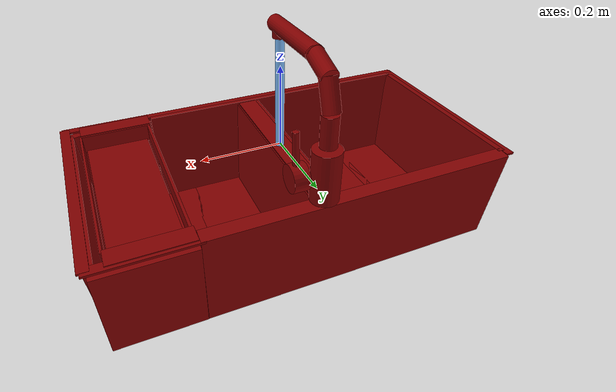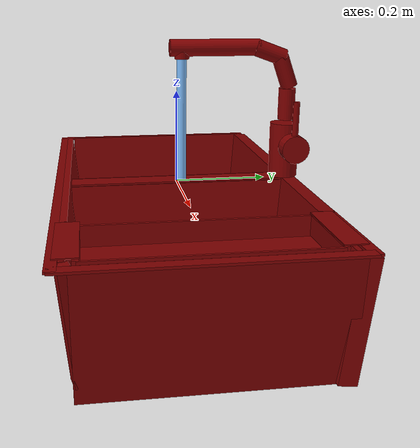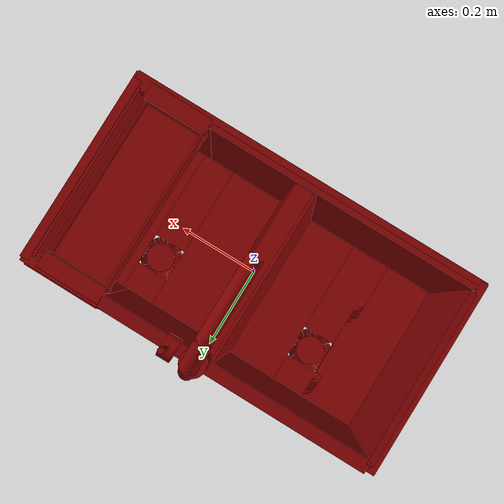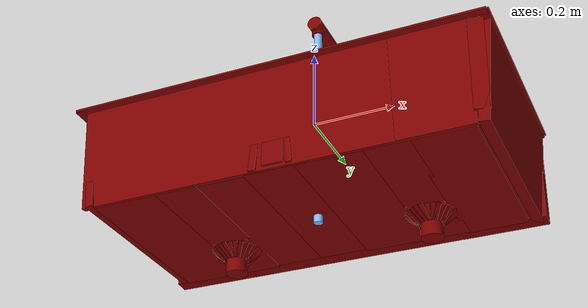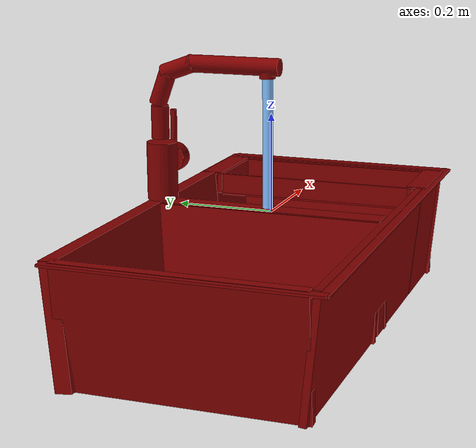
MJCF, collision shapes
<mujoco model="model">
  <compiler angle="radian"/>
  <asset>
    <mesh file="visuals/handle.obj" name="handle_vis"/>
    <mesh file="visuals/Body001.obj" name="Body001_vis"/>
    <mesh file="visuals/Container001.obj" name="Container001_vis"/>
    <mesh file="visuals/Funnel001.obj" name="Funnel001_vis"/>
    <mesh file="visuals/Funnel002.obj" name="Funnel002_vis"/>
    <mesh file="visuals/spout.obj" name="spout_vis"/>
    <texture file="visuals/T_BC001.png" name="Body001_material" type="2d"/>
    <material name="Body001_material" rgba="1 1 1 1.0" texture="Body001_material" shininess="0.4472135901451111" specular="0.7"/>
    <texture file="visuals/T_BC001.png" name="handle_material" type="2d"/>
    <material name="handle_material" rgba="1 1 1 1.0" texture="handle_material" shininess="0.4472135901451111" specular="0.7"/>
    <texture file="visuals/T_BC001.png" name="Container001_material" type="2d"/>
    <material name="Container001_material" rgba="1 1 1 1.0" texture="Container001_material" shininess="0.4472135901451111" specular="0.7"/>
    <texture file="visuals/T_BC001.png" name="Funnel001_material" type="2d"/>
    <material name="Funnel001_material" rgba="1 1 1 1.0" texture="Funnel001_material" shininess="0.4472135901451111" specular="0.7"/>
    <texture file="visuals/T_BC001.png" name="Funnel002_material" type="2d"/>
    <material name="Funnel002_material" rgba="1 1 1 1.0" texture="Funnel002_material" shininess="0.4472135901451111" specular="0.7"/>
    <texture file="visuals/T_BC001.png" name="spout_material" type="2d"/>
    <material name="spout_material" rgba="1 1 1 1.0" texture="spout_material" shininess="0.4472135901451111" specular="0.7"/>
  </asset>
  <default>
    <default class="visual">
      <geom conaffinity="0" contype="0" group="1" type="mesh"/>
    </default>
    <default class="collision">
      <geom group="0" rgba="0.5 0 0 0.5"/>
    </default>
    <default class="spawn">
      <geom group="0" rgba="1 1 1 0.5" contype="0" conaffinity="0"/>
      <site group="0" rgba="1 1 1 0.5"/>
    </default>
    <default class="region">
      <geom group="1" conaffinity="0" contype="0" rgba="0 1 0 0"/>
    </default>
  </default>
  <worldbody>
    <body>
      <body name="object">
        <geom mesh="Body001_vis" type="mesh" solimp="0.998 0.998 0.001" solref="0.001 1" density="100" friction="0.95 0.3 0.1" class="visual" material="Body001_material"/>
        <geom class="collision" type="box" pos="-0.097335 0.240961 -0.119441" size="0.3727695345878601 0.01719934493303299 0.12440010160207748" quat="0.9990482330322266 -0.04361938312649727 -0.0 0.0"/>
        <geom class="collision" type="box" pos="-0.099577 -0.232523 -0.117567" size="0.37052756547927856 0.007144593633711338 0.12359046936035156" quat="0.9987403750419617 0.05017662048339844 0.0 0.0"/>
        <geom class="collision" type="box" pos="0.001221 0.005688 -0.114451" size="0.024436986073851585 0.239365354180336 0.11916808784008026" quat="1.0 0.0 0.0 0.0"/>
        <geom class="collision" type="box" pos="-0.459418 0.005688 -0.118069" size="0.23936714231967926 0.009068615734577179 0.12404944002628326" quat="0.7063643336296082 0.03239481896162033 -0.032394833862781525 -0.7063643336296082"/>
        <geom class="collision" type="box" pos="0.468554 0.005688 -0.121440" size="0.23936714231967926 0.012515637092292309 0.1218361184000969" quat="0.7064337730407715 -0.030843568965792656 0.030843574553728104 -0.7064337730407715"/>
        <geom class="collision" type="box" pos="-0.121145 0.000711 -0.235452" size="0.07363183796405792 0.2215971201658249 0.004479744005948305" quat="1.0 0.0 0.0 0.0"/>
        <geom class="collision" type="box" pos="-0.364013 0.000711 -0.236947" size="0.07776174694299698 0.22159627079963684 0.0055097537115216255" quat="1.0 0.0 0.0 0.0"/>
        <geom class="collision" type="box" pos="-0.245916 -0.086719 -0.236947" size="0.06047846004366875 0.13416701555252075 0.005509753245860338" quat="1.0 0.0 0.0 0.0"/>
        <geom class="collision" type="box" pos="-0.245916 0.179095 -0.236947" size="0.060478467494249344 0.04014301672577858 0.005509752780199051" quat="1.0 0.0 0.0 0.0"/>
        <geom class="collision" type="box" pos="0.241691 0.178760 -0.237091" size="0.060478467494249344 0.04047823324799538 0.005365547724068165" quat="1.0 0.0 0.0 0.0"/>
        <geom class="collision" type="box" pos="0.241691 -0.086917 -0.237091" size="0.06047846004366875 0.13396848738193512 0.005365561693906784" quat="1.0 0.0 0.0 0.0"/>
        <geom class="collision" type="box" pos="0.122644 0.000711 -0.237091" size="0.07681215554475784 0.22159676253795624 0.005365575663745403" quat="1.0 0.0 0.0 0.0"/>
        <geom class="collision" type="box" pos="0.366532 0.000711 -0.237091" size="0.07356063276529312 0.2215968519449234 0.005365582183003426" quat="1.0 0.0 0.0 0.0"/>
        <geom class="collision" type="box" pos="0.357728 -0.232689 -0.120407" size="0.08612968027591705 0.007161289919167757 0.12030033767223358" quat="0.998741865158081 0.05014668405056 0.0 0.0"/>
        <geom class="collision" type="box" pos="0.379096 0.243411 -0.124631" size="0.1026066467165947 0.01779850758612156 0.11898449063301086" quat="0.9984838366508484 -0.05504579097032547 -0.0 0.0"/>
        <geom class="collision" type="cylinder" pos="0.005860 0.243191 0.066900" size="0.03196365758776665 0.05996483936905861" quat="1.0 0.0 0.0 0.0"/>
        <geom class="collision" type="box" pos="-0.034658 0.005688 -0.118621" size="0.008054555393755436 0.239366352558136 0.122091144323349" quat="0.9988089203834534 0.0 0.04879241809248924 0.0"/>
        <geom class="collision" type="box" pos="0.030966 0.005688 -0.117954" size="0.006487147882580757 0.239366352558136 0.1191689521074295" quat="0.9994208216667175 0.0 -0.03402910754084587 0.0"/>
        <geom class="collision" type="box" pos="0.001359 0.000711 -0.239127" size="0.07363183796405792 0.2215971201658249 0.0020765289664268494" quat="1.0 0.0 0.0 0.0"/>
        <geom class="collision" type="cylinder" pos="-0.241272 0.095636 -0.288460" size="0.025850877165794373 0.01687796041369438" quat="1.0 0.0 0.0 0.0"/>
        <geom class="collision" type="cylinder" pos="0.245279 0.095636 -0.288460" size="0.025850877165794373 0.01687796041369438" quat="1.0 0.0 0.0 0.0"/>
        <geom class="collision" type="box" pos="0.457434 -0.231868 -0.107635" size="0.01751090958714485 0.012311534956097603 0.10557723045349121" quat="0.992235541343689 0.04669763520359993 0.009445227682590485 0.11488579213619232"/>
        <geom class="collision" type="box" pos="0.001010 -0.259458 0.001205" size="0.49104857444763184 0.010111307725310326 0.002418790478259325" quat="1.0 0.0 0.0 0.0"/>
        <geom class="collision" type="box" pos="-0.482469 -0.002319 0.001205" size="0.010111324489116669 0.26331180334091187 0.002418791875243187" quat="1.0 0.0 0.0 0.0"/>
        <geom class="collision" type="box" pos="0.484904 -0.002319 0.001205" size="0.011575013399124146 0.26331183314323425 0.002418791875243187" quat="1.0 0.0 0.0 0.0"/>
        <geom class="collision" type="box" pos="-0.199744 0.085283 -0.258705" size="0.001313244691118598 0.0054823001846671104 0.020730527117848396" quat="0.8857115507125854 0.09684006124734879 0.40027427673339844 -0.21428391337394714"/>
        <geom class="collision" type="box" pos="-0.204040 0.075107 -0.258705" size="0.001313244691118598 0.0054823001846671104 0.020730527117848396" quat="0.8625609874725342 0.13283111155033112 0.3898119330406189 -0.29392358660697937"/>
        <geom class="collision" type="box" pos="-0.212181 0.065723 -0.258705" size="0.001313244691118598 0.0054823001846671104 0.020730527117848396" quat="0.8553867936134338 0.14199042320251465 0.3865698277950287 -0.3141908645629883"/>
        <geom class="collision" type="box" pos="-0.218513 0.059165 -0.258705" size="0.001313244691118598 0.0054823001846671104 0.020730527117848396" quat="0.823074221611023 0.17674292623996735 0.3719668984413147 -0.3910899758338928"/>
        <geom class="collision" type="box" pos="-0.237621 0.053964 -0.258705" size="0.001313244691118598 0.0054823001846671104 0.020730527117848396" quat="0.6984293460845947 0.26451992988586426 0.31563693284988403 -0.5853195190429688"/>
        <geom class="collision" type="box" pos="-0.226427 0.055321 -0.258705" size="0.001313244691118598 0.0054823001846671104 0.020730527117848396" quat="0.7480040788650513 0.23521433770656586 0.33804091811180115 -0.520473301410675"/>
        <geom class="collision" type="box" pos="-0.231833 0.137355 -0.258705" size="0.001313244691118598 0.0054823001846671104 0.020730527117848396" quat="0.7815460562705994 -0.21177266538143158 0.35319942235946655 0.4686024785041809"/>
        <geom class="collision" type="box" pos="-0.221726 0.132898 -0.258705" size="0.001313244691118598 0.0054823001846671104 0.020730527117848396" quat="0.8209136128425598 -0.1787833571434021 0.370990514755249 0.39560505747795105"/>
        <geom class="collision" type="box" pos="-0.212472 0.124610 -0.258705" size="0.001313244691118598 0.0054823001846671104 0.020730527117848396" quat="0.8300180435180664 -0.169981449842453 0.37510499358177185 0.37612849473953247"/>
        <geom class="collision" type="box" pos="-0.206015 0.118175 -0.258705" size="0.001313244691118598 0.005482300650328398 0.020730527117848396" quat="0.8609333634376526 -0.13497036695480347 0.3890765905380249 0.2986571788787842"/>
        <geom class="collision" type="box" pos="-0.201117 0.098987 -0.258705" size="0.001313244691118598 0.0054823001846671104 0.020730527117848396" quat="0.9083518981933594 -0.03289860486984253 0.4105059504508972 0.07279683649539948"/>
        <geom class="collision" type="box" pos="-0.202297 0.110201 -0.258705" size="0.001313244691118598 0.005482300650328398 0.020730527117848396" quat="0.8981937766075134 -0.0695001408457756 0.405915230512619 0.15378731489181519"/>
        <geom class="collision" type="box" pos="-0.283537 0.106722 -0.258705" size="0.001313244691118598 0.0054823001846671104 0.020730527117848396" quat="0.21711264550685883 -0.39996278285980225 0.09811841696500778 0.8850224018096924"/>
        <geom class="collision" type="box" pos="-0.279175 0.116870 -0.258705" size="0.001313244691118598 0.0054823001846671104 0.020730527117848396" quat="0.2966778874397278 -0.38938549160957336 0.13407579064369202 0.8616175651550293"/>
        <geom class="collision" type="box" pos="-0.270975 0.126202 -0.258705" size="0.001313244691118598 0.0054823001846671104 0.020730527117848396" quat="0.31692206859588623 -0.3861141502857208 0.14322467148303986 0.8543787002563477"/>
        <geom class="collision" type="box" pos="-0.264601 0.132719 -0.258705" size="0.0013132448075339198 0.0054823001846671104 0.020730527117848396" quat="0.3937176465988159 -0.37140023708343506 0.17793041467666626 0.8218205571174622"/>
        <geom class="collision" type="box" pos="-0.245460 0.137798 -0.258705" size="0.0013132448075339198 0.0054823001846671104 0.020730527117848396" quat="0.5875478386878967 -0.3147902488708496 0.2655269205570221 0.6965559124946594"/>
        <geom class="collision" type="box" pos="-0.256662 0.136513 -0.258705" size="0.001313244691118598 0.0054823001846671104 0.020730527117848396" quat="0.5228604674339294 -0.33728769421577454 0.23629315197467804 0.7463374137878418"/>
        <geom class="collision" type="box" pos="-0.254097 0.054588 -0.258705" size="0.001313244691118598 0.0054823001846671104 0.020730527117848396" quat="0.4672184884548187 0.35357359051704407 0.21114712953567505 -0.7823742628097534"/>
        <geom class="collision" type="box" pos="-0.264188 0.059080 -0.258705" size="0.001313244691118598 0.0054823001846671104 0.020730527117848396" quat="0.3941517472267151 0.37130630016326904 0.17812657356262207 -0.8216124176979065"/>
        <geom class="collision" type="box" pos="-0.273413 0.067401 -0.258705" size="0.001313244691118598 0.0054823001846671104 0.020730527117848396" quat="0.37465900182724 0.3754052221775055 0.1693173348903656 -0.8306823372840881"/>
        <geom class="collision" type="box" pos="-0.279847 0.073859 -0.258705" size="0.001313244691118598 0.0054823001846671104 0.020730527117848396" quat="0.297132670879364 0.3893146216869354 0.13428127765655518 -0.8614608645439148"/>
        <geom class="collision" type="box" pos="-0.284677 0.093064 -0.258705" size="0.001313244691118598 0.0054823001846671104 0.020730527117848396" quat="0.0711892694234848 0.41056355834007263 0.03217211365699768 -0.9084792733192444"/>
        <geom class="collision" type="box" pos="-0.283537 0.081846 -0.258705" size="0.001313244691118598 0.0054823001846671104 0.020730527117848396" quat="0.15219734609127045 0.4060375392436981 0.06878159195184708 -0.898464560508728"/>
        <geom class="collision" type="box" pos="-0.245196 0.051929 -0.258705" size="0.001313244691118598 0.0054823001846671104 0.020730527117848396" quat="0.549514651298523 0.3285198509693146 0.24833878874778748 -0.7269361615180969"/>
        <geom class="collision" type="box" pos="-0.236808 0.140408 -0.258705" size="0.0013132448075339198 0.005482300650328398 0.020730527117848396" quat="0.6244293451309204 -0.29993945360183716 0.2821945548057556 0.6636946201324463"/>
        <geom class="collision" type="box" pos="-0.286024 0.101521 -0.258705" size="0.0013132448075339198 0.0054823001846671104 0.020730527117848396" quat="0.039065562188625336 -0.4114435017108917 0.01765468530356884 0.9104264974594116"/>
        <geom class="collision" type="box" pos="-0.198387 0.090823 -0.258705" size="0.0013132448075339198 0.0054823001846671104 0.020730527117848396" quat="0.9110049605369568 -0.009822927415370941 0.41170498728752136 0.02173585072159767"/>
        <geom class="collision" type="box" pos="0.288038 0.085283 -0.258705" size="0.001313244691118598 0.0054823001846671104 0.020730527117848396" quat="0.8857115507125854 0.09684006124734879 0.40027427673339844 -0.21428391337394714"/>
        <geom class="collision" type="box" pos="0.283742 0.075107 -0.258705" size="0.001313244691118598 0.0054823001846671104 0.020730527117848396" quat="0.8625609874725342 0.13283111155033112 0.3898119330406189 -0.29392358660697937"/>
        <geom class="collision" type="box" pos="0.275601 0.065723 -0.258705" size="0.001313244691118598 0.0054823001846671104 0.020730527117848396" quat="0.8553867936134338 0.14199042320251465 0.3865698277950287 -0.3141908645629883"/>
        <geom class="collision" type="box" pos="0.269269 0.059165 -0.258705" size="0.001313244691118598 0.0054823001846671104 0.020730527117848396" quat="0.823074221611023 0.17674292623996735 0.3719668984413147 -0.3910899758338928"/>
        <geom class="collision" type="box" pos="0.250161 0.053964 -0.258705" size="0.001313244691118598 0.0054823001846671104 0.020730527117848396" quat="0.6984293460845947 0.26451992988586426 0.31563693284988403 -0.5853195190429688"/>
        <geom class="collision" type="box" pos="0.261355 0.055321 -0.258705" size="0.001313244691118598 0.0054823001846671104 0.020730527117848396" quat="0.7480040788650513 0.23521433770656586 0.33804091811180115 -0.520473301410675"/>
        <geom class="collision" type="box" pos="0.255949 0.137355 -0.258705" size="0.001313244691118598 0.0054823001846671104 0.020730527117848396" quat="0.7815460562705994 -0.21177266538143158 0.35319942235946655 0.4686024785041809"/>
        <geom class="collision" type="box" pos="0.266056 0.132898 -0.258705" size="0.001313244691118598 0.0054823001846671104 0.020730527117848396" quat="0.8209136128425598 -0.1787833571434021 0.370990514755249 0.39560505747795105"/>
        <geom class="collision" type="box" pos="0.275310 0.124610 -0.258705" size="0.001313244691118598 0.0054823001846671104 0.020730527117848396" quat="0.8300180435180664 -0.169981449842453 0.37510499358177185 0.37612849473953247"/>
        <geom class="collision" type="box" pos="0.281767 0.118175 -0.258705" size="0.001313244691118598 0.005482300650328398 0.020730527117848396" quat="0.8609333634376526 -0.13497036695480347 0.3890765905380249 0.2986571788787842"/>
        <geom class="collision" type="box" pos="0.286665 0.098987 -0.258705" size="0.001313244691118598 0.0054823001846671104 0.020730527117848396" quat="0.9083518981933594 -0.03289860486984253 0.4105059504508972 0.07279683649539948"/>
        <geom class="collision" type="box" pos="0.285485 0.110201 -0.258705" size="0.001313244691118598 0.005482300650328398 0.020730527117848396" quat="0.8981937766075134 -0.0695001408457756 0.405915230512619 0.15378731489181519"/>
        <geom class="collision" type="box" pos="0.204245 0.106722 -0.258705" size="0.001313244691118598 0.0054823001846671104 0.020730527117848396" quat="0.21711264550685883 -0.39996278285980225 0.09811841696500778 0.8850224018096924"/>
        <geom class="collision" type="box" pos="0.208607 0.116870 -0.258705" size="0.001313244691118598 0.0054823001846671104 0.020730527117848396" quat="0.2966778874397278 -0.38938549160957336 0.13407579064369202 0.8616175651550293"/>
        <geom class="collision" type="box" pos="0.216807 0.126202 -0.258705" size="0.001313244691118598 0.0054823001846671104 0.020730527117848396" quat="0.31692206859588623 -0.3861141502857208 0.14322467148303986 0.8543787002563477"/>
        <geom class="collision" type="box" pos="0.223181 0.132719 -0.258705" size="0.0013132448075339198 0.0054823001846671104 0.020730527117848396" quat="0.3937176465988159 -0.37140023708343506 0.17793041467666626 0.8218205571174622"/>
        <geom class="collision" type="box" pos="0.242322 0.137798 -0.258705" size="0.0013132448075339198 0.0054823001846671104 0.020730527117848396" quat="0.5875478386878967 -0.3147902488708496 0.2655269205570221 0.6965559124946594"/>
        <geom class="collision" type="box" pos="0.231120 0.136513 -0.258705" size="0.001313244691118598 0.0054823001846671104 0.020730527117848396" quat="0.5228604674339294 -0.33728769421577454 0.23629315197467804 0.7463374137878418"/>
        <geom class="collision" type="box" pos="0.233685 0.054588 -0.258705" size="0.001313244691118598 0.0054823001846671104 0.020730527117848396" quat="0.4672184884548187 0.35357359051704407 0.21114712953567505 -0.7823742628097534"/>
        <geom class="collision" type="box" pos="0.223594 0.059080 -0.258705" size="0.001313244691118598 0.0054823001846671104 0.020730527117848396" quat="0.3941517472267151 0.37130630016326904 0.17812657356262207 -0.8216124176979065"/>
        <geom class="collision" type="box" pos="0.214369 0.067401 -0.258705" size="0.001313244691118598 0.0054823001846671104 0.020730527117848396" quat="0.37465900182724 0.3754052221775055 0.1693173348903656 -0.8306823372840881"/>
        <geom class="collision" type="box" pos="0.207935 0.073859 -0.258705" size="0.001313244691118598 0.0054823001846671104 0.020730527117848396" quat="0.297132670879364 0.3893146216869354 0.13428127765655518 -0.8614608645439148"/>
        <geom class="collision" type="box" pos="0.203105 0.093064 -0.258705" size="0.001313244691118598 0.0054823001846671104 0.020730527117848396" quat="0.0711892694234848 0.41056355834007263 0.03217211365699768 -0.9084792733192444"/>
        <geom class="collision" type="box" pos="0.204245 0.081846 -0.258705" size="0.001313244691118598 0.0054823001846671104 0.020730527117848396" quat="0.15219734609127045 0.4060375392436981 0.06878159195184708 -0.898464560508728"/>
        <geom class="collision" type="box" pos="0.242586 0.051929 -0.258705" size="0.001313244691118598 0.0054823001846671104 0.020730527117848396" quat="0.549514651298523 0.3285198509693146 0.24833878874778748 -0.7269361615180969"/>
        <geom class="collision" type="box" pos="0.250974 0.140408 -0.258705" size="0.0013132448075339198 0.005482300650328398 0.020730527117848396" quat="0.6244293451309204 -0.29993945360183716 0.2821945548057556 0.6636946201324463"/>
        <geom class="collision" type="box" pos="0.201758 0.101521 -0.258705" size="0.0013132448075339198 0.0054823001846671104 0.020730527117848396" quat="0.039065562188625336 -0.4114435017108917 0.01765468530356884 0.9104264974594116"/>
        <geom class="collision" type="box" pos="0.289395 0.090823 -0.258705" size="0.0013132448075339198 0.0054823001846671104 0.020730527117848396" quat="0.9110049605369568 -0.009822927415370941 0.41170498728752136 0.02173585072159767"/>
        <geom class="collision" type="box" pos="0.378371 0.257890 0.000666" size="0.113394595682621 0.011575007811188698 0.0024187916424125433" quat="1.0 0.0 0.0 0.0"/>
        <body name="handle">
          <joint axis="1.0 0.0 0.0" pos="0.069759 0.246300 0.081853" limited="true" name="handle_joint_hinge_0" type="hinge" range="-0.7853981633974483 0.7853981633974483" damping="1" frictionloss="1" armature=".01" stiffness="0.05"/>
          <joint axis="0.0 1.0 0.0" pos="0.069759 0.246300 0.081853" limited="true" name="handle_joint_hinge_1" type="hinge" range="0.0 0.2617993877991494" damping="1" frictionloss="1" armature=".01" stiffness="0.05"/>
          <geom mesh="handle_vis" type="mesh" solimp="0.998 0.998 0.001" solref="0.001 1" density="100" friction="0.95 0.3 0.1" class="visual" material="handle_material"/>
          <geom class="collision" type="cylinder" pos="0.071078 0.246465 0.081209" size="0.029938509687781334 0.017088504508137703" quat="0.7071068286895752 -0.0 0.7071067690849304 0.0"/>
          <geom class="collision" type="cylinder" pos="0.074926 0.246465 0.146780" size="0.006895358208566904 0.03648107498884201" quat="0.9999178647994995 0.0 0.012815705500543118 0.0"/>
        </body>
        <body name="Container001">
          <joint axis="0.0 0.0 1.0" pos="0.366107 -0.000042 -0.019851" limited="true" name="Container001_joint" range="0.0 0.25" type="slide" damping="1" frictionloss="1" armature=".01" stiffness="0.05"/>
          <geom mesh="Container001_vis" type="mesh" solimp="0.998 0.998 0.001" solref="0.001 1" density="100" friction="0.95 0.3 0.1" class="visual" material="Container001_material"/>
          <geom class="collision" type="box" pos="0.367119 0.000711 -0.043747" size="0.07616298645734787 0.22159786522388458 0.005960690323263407" quat="1.0 0.0 0.0 0.0"/>
          <geom class="collision" type="box" pos="0.282037 0.000711 -0.020723" size="0.0032559500541538 0.2215978503227234 0.02203122153878212" quat="1.0 0.0 0.0 0.0"/>
          <geom class="collision" type="box" pos="0.450418 0.000711 -0.020723" size="0.0027486684266477823 0.22159847617149353 0.022031215950846672" quat="1.0 0.0 0.0 0.0"/>
          <geom class="collision" type="box" pos="0.362841 -0.221944 -0.020723" size="0.08651956170797348 0.0059606642462313175 0.022031269967556" quat="1.0 0.0 0.0 0.0"/>
          <geom class="collision" type="box" pos="0.362841 0.223518 -0.020723" size="0.08651956170797348 0.0059606642462313175 0.022031256929039955" quat="1.0 0.0 0.0 0.0"/>
          <geom class="collision" type="box" pos="0.362841 0.239888 0.004288" size="0.08651945739984512 0.022031182423233986 0.001080724992789328" quat="1.0 0.0 0.0 0.0"/>
          <geom class="collision" type="box" pos="0.362841 -0.237338 0.005463" size="0.08651956170797348 0.022031186148524284 0.0012742563849315047" quat="1.0 0.0 0.0 0.0"/>
        </body>
        <body name="Funnel001">
          <joint axis="0.0 0.0 1.0" pos="-0.241197 0.095093 -0.243056" limited="true" name="Funnel001_joint" range="0.0 0.3" type="slide" damping="1" frictionloss="1" armature=".01" stiffness="0.05"/>
          <geom mesh="Funnel001_vis" type="mesh" solimp="0.998 0.998 0.001" solref="0.001 1" density="100" friction="0.95 0.3 0.1" class="visual" material="Funnel001_material"/>
          <geom class="collision" type="cylinder" pos="-0.241739 0.095164 -0.236052" size="0.03943944349884987 0.003031711792573333" quat="1.0 0.0 3.725290298461914e-09 0.0"/>
        </body>
        <body name="Funnel002">
          <joint axis="0.0 0.0 1.0" pos="0.245474 0.095093 -0.243056" limited="true" name="Funnel002_joint" range="0.0 0.15" type="slide" damping="1" frictionloss="1" armature=".01" stiffness="0.05"/>
          <geom mesh="Funnel002_vis" type="mesh" solimp="0.998 0.998 0.001" solref="0.001 1" density="100" friction="0.95 0.3 0.1" class="visual" material="Funnel002_material"/>
          <geom class="collision" type="cylinder" pos="0.246936 0.095164 -0.236052" size="0.03943944349884987 0.003031711792573333" quat="1.0 0.0 3.725290298461914e-09 0.0"/>
        </body>
        <body name="spout">
          <joint axis="0.0 0.0 1.0" pos="0.006476 0.242850 0.278833" limited="true" name="spout_joint" range="-0.7853981633974483 0.7853981633974483" type="hinge" damping="1" frictionloss="1" armature=".01" stiffness="0.05"/>
          <site type="cylinder" rgba="0.5 0.75 1 1" size="0.010549696162343025 0.2677684426307678" pos="0.005527 0.009905 0.008198" name="water"/>
          <geom mesh="spout_vis" type="mesh" solimp="0.998 0.998 0.001" solref="0.001 1" density="100" friction="0.95 0.3 0.1" class="visual" material="spout_material"/>
          <geom class="collision" type="cylinder" pos="0.005860 0.245630 0.168996" size="0.018415158614516258 0.03454742580652237" quat="1.0 0.0 0.0 0.0"/>
          <geom class="collision" type="cylinder" pos="0.005860 0.081873 0.292585" size="0.018038813024759293 0.09722638130187988" quat="0.7071068286895752 -0.7071067690849304 -0.0 0.0"/>
          <geom class="collision" type="cylinder" pos="0.005860 0.238172 0.238982" size="0.018415158614516258 0.03454742580652237" quat="0.9848077297210693 0.17364826798439026 0.0 0.0"/>
          <geom class="collision" type="cylinder" pos="0.005860 0.202445 0.281502" size="0.018415158614516258 0.03454742580652237" quat="0.8191519975662231 0.5735765099525452 0.0 0.0"/>
          <geom class="collision" type="cylinder" pos="0.006199 0.010619 0.276967" size="0.01598123088479042 0.007570096757262945" quat="1.0 0.0 0.0 0.0"/>
        </body>
        <geom class="region" name="reg_main" type="box" pos="-5.000000000143778e-07 0.0 -0.1507655" size="0.4962995 0.270171 0.15436450000000002"/>
        <geom class="region" name="reg_basin_left" type="box" pos="-0.25750449999999997 -0.013367500000000004 -0.128295" size="0.20450549999999998 0.2233785 0.099789"/>
        <geom class="region" name="reg_basin_right" type="box" pos="0.151138 -0.011430999999999997 -0.128295" size="0.12230099999999999 0.221442 0.099789"/>
      </body>
    </body>
  </worldbody>
  <actuator>
    <motor name="handle_joint_hinge_0_actuator" joint="handle_joint_hinge_0" gear="10"/>
    <motor name="handle_joint_hinge_1_actuator" joint="handle_joint_hinge_1" gear="10"/>
    <motor name="Container001_joint_actuator" joint="Container001_joint" gear="50"/>
    <motor name="Funnel001_joint_actuator" joint="Funnel001_joint" gear="10"/>
    <motor name="Funnel002_joint_actuator" joint="Funnel002_joint" gear="10"/>
    <motor name="spout_joint_actuator" joint="spout_joint" gear="10"/>
  </actuator>
</mujoco>
